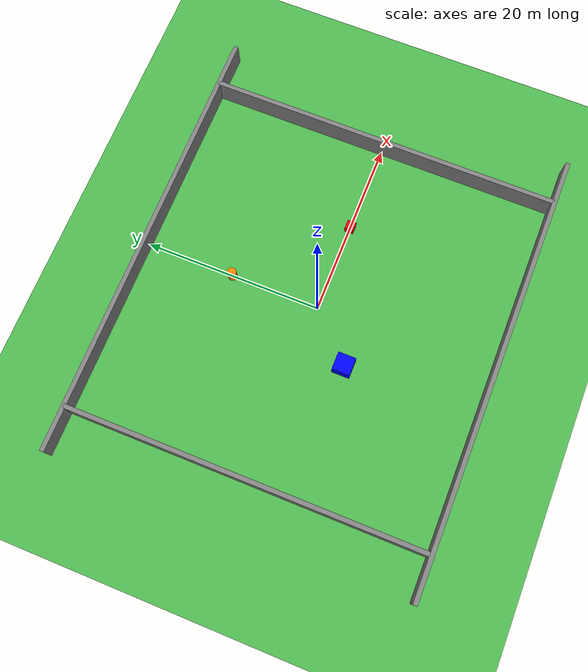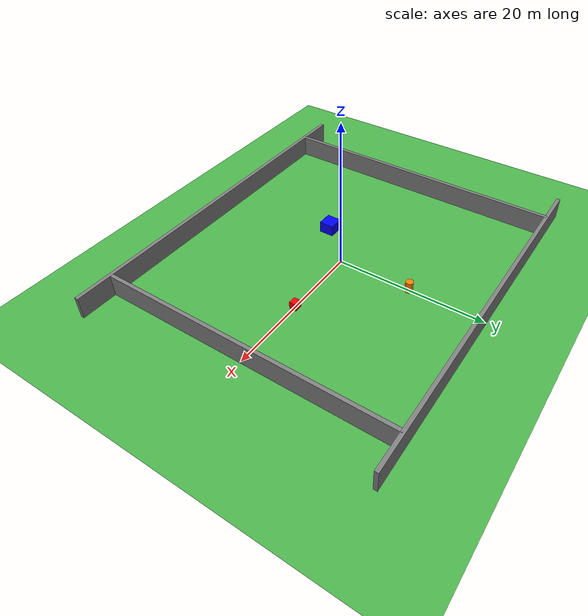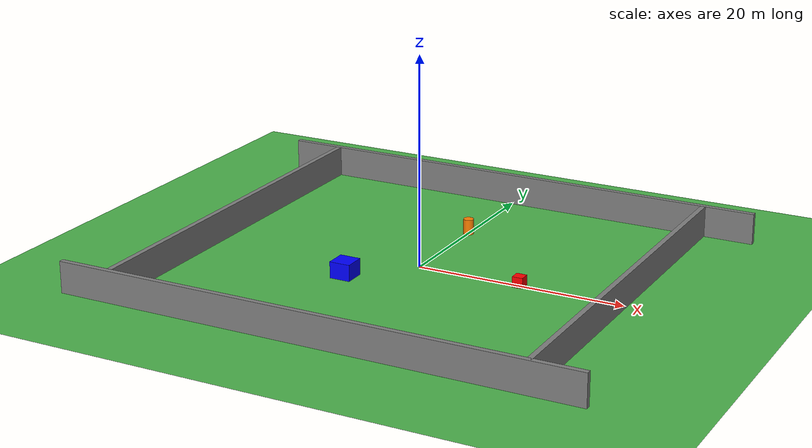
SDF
<?xml version="1.0" ?>
<sdf version="1.9">
  <world name="tracking_test">

    <!-- Physics -->
    <physics name="1ms" type="ignored">
      <max_step_size>0.001</max_step_size>
      <real_time_factor>1.0</real_time_factor>
    </physics>

    <!-- Plugins -->
    <plugin filename="gz-sim-physics-system" name="gz::sim::systems::Physics"/>
    <plugin filename="gz-sim-user-commands-system" name="gz::sim::systems::UserCommands"/>
    <plugin filename="gz-sim-scene-broadcaster-system" name="gz::sim::systems::SceneBroadcaster"/>
    <plugin filename="gz-sim-imu-system" name="gz::sim::systems::Imu"/>
    <plugin filename="gz-sim-sensors-system" name="gz::sim::systems::Sensors">
      <render_engine>ogre2</render_engine>
    </plugin>
    <plugin filename="gz-sim-air-pressure-system" name="gz::sim::systems::AirPressure"/>
    <plugin filename="gz-sim-altimeter-system" name="gz::sim::systems::Altimeter"/>
    <plugin filename="gz-sim-magnetometer-system" name="gz::sim::systems::Magnetometer"/>

    <!-- GUI -->
    <gui fullscreen="0">
      <plugin filename="MinimalScene" name="3D View">
        <gz-gui>
          <title>3D View</title>
          <property type="bool" key="showTitleBar">false</property>
          <property type="string" key="state">docked</property>
        </gz-gui>
        <engine>ogre2</engine>
        <scene>scene</scene>
        <ambient_light>0.4 0.4 0.4</ambient_light>
        <background_color>0.8 0.8 0.8</background_color>
        <camera_pose>-6 0 6 0 0.5 0</camera_pose>
      </plugin>
    </gui>

    <!-- Lighting -->
    <light type="directional" name="sun">
      <cast_shadows>true</cast_shadows>
      <pose>0 0 10 0 0 0</pose>
      <diffuse>0.8 0.8 0.8 1</diffuse>
      <specular>0.2 0.2 0.2 1</specular>
      <attenuation>
        <range>1000</range>
        <constant>0.9</constant>
        <linear>0.01</linear>
        <quadratic>0.001</quadratic>
      </attenuation>
      <direction>-0.5 0.1 -0.9</direction>
    </light>

    <!-- Ground Plane -->
    <model name="ground_plane">
      <static>true</static>
      <link name="link">
        <collision name="collision">
          <geometry>
            <plane>
              <normal>0 0 1</normal>
              <size>100 100</size>
            </plane>
          </geometry>
        </collision>
        <visual name="visual">
          <geometry>
            <plane>
              <normal>0 0 1</normal>
              <size>100 100</size>
            </plane>
          </geometry>
          <material>
            <ambient>0.3 0.7 0.3 1</ambient>
            <diffuse>0.3 0.7 0.3 1</diffuse>
            <specular>0 0 0 1</specular>
          </material>
        </visual>
      </link>
    </model>

    <!-- Moving Red Box (Target Object) -->
    <model name="red_target">
      <pose>10 0 0.5 0 0 0</pose>
      <link name="link">
        <inertial>
          <mass>1.0</mass>
          <inertia>
            <ixx>0.166</ixx>
            <ixy>0</ixy>
            <ixz>0</ixz>
            <iyy>0.166</iyy>
            <iyz>0</iyz>
            <izz>0.166</izz>
          </inertia>
        </inertial>
        <collision name="collision">
          <geometry>
            <box>
              <size>1 1 1</size>
            </box>
          </geometry>
        </collision>
        <visual name="visual">
          <geometry>
            <box>
              <size>1 1 1</size>
            </box>
          </geometry>
          <material>
            <ambient>1 0 0 1</ambient>
            <diffuse>1 0 0 1</diffuse>
            <specular>0.5 0.5 0.5 1</specular>
          </material>
        </visual>
      </link>
    </model>

    <!-- Moving Orange Cylinder -->
    <model name="orange_cylinder">
      <pose>0 10 0.75 0 0 0</pose>
      <link name="link">
        <inertial>
          <mass>1.0</mass>
          <inertia>
            <ixx>0.145</ixx>
            <ixy>0</ixy>
            <ixz>0</ixz>
            <iyy>0.145</iyy>
            <iyz>0</iyz>
            <izz>0.125</izz>
          </inertia>
        </inertial>
        <collision name="collision">
          <geometry>
            <cylinder>
              <radius>0.5</radius>
              <length>1.5</length>
            </cylinder>
          </geometry>
        </collision>
        <visual name="visual">
          <geometry>
            <cylinder>
              <radius>0.5</radius>
              <length>1.5</length>
            </cylinder>
          </geometry>
          <material>
            <ambient>1 0.5 0 1</ambient>
            <diffuse>1 0.5 0 1</diffuse>
            <specular>0.5 0.5 0.5 1</specular>
          </material>
        </visual>
      </link>
    </model>

    <!-- Static Blue Box (Landmark) -->
    <model name="blue_landmark">
      <static>true</static>
      <pose>-5 -5 0.5 0 0 0</pose>
      <link name="link">
        <collision name="collision">
          <geometry>
            <box>
              <size>2 2 2</size>
            </box>
          </geometry>
        </collision>
        <visual name="visual">
          <geometry>
            <box>
              <size>2 2 2</size>
            </box>
          </geometry>
          <material>
            <ambient>0 0 1 1</ambient>
            <diffuse>0 0 1 1</diffuse>
            <specular>0.3 0.3 0.3 1</specular>
          </material>
        </visual>
      </link>
    </model>

    <!-- Walls to create an arena -->
    <model name="wall_north">
      <static>true</static>
      <pose>0 20 1.5 0 0 0</pose>
      <link name="link">
        <collision name="collision">
          <geometry>
            <box>
              <size>50 0.5 3</size>
            </box>
          </geometry>
        </collision>
        <visual name="visual">
          <geometry>
            <box>
              <size>50 0.5 3</size>
            </box>
          </geometry>
          <material>
            <ambient>0.5 0.5 0.5 1</ambient>
            <diffuse>0.5 0.5 0.5 1</diffuse>
          </material>
        </visual>
      </link>
    </model>

    <model name="wall_south">
      <static>true</static>
      <pose>0 -20 1.5 0 0 0</pose>
      <link name="link">
        <collision name="collision">
          <geometry>
            <box>
              <size>50 0.5 3</size>
            </box>
          </geometry>
        </collision>
        <visual name="visual">
          <geometry>
            <box>
              <size>50 0.5 3</size>
            </box>
          </geometry>
          <material>
            <ambient>0.5 0.5 0.5 1</ambient>
            <diffuse>0.5 0.5 0.5 1</diffuse>
          </material>
        </visual>
      </link>
    </model>

    <model name="wall_east">
      <static>true</static>
      <pose>20 0 1.5 0 0 0</pose>
      <link name="link">
        <collision name="collision">
          <geometry>
            <box>
              <size>0.5 40 3</size>
            </box>
          </geometry>
        </collision>
        <visual name="visual">
          <geometry>
            <box>
              <size>0.5 40 3</size>
            </box>
          </geometry>
          <material>
            <ambient>0.5 0.5 0.5 1</ambient>
            <diffuse>0.5 0.5 0.5 1</diffuse>
          </material>
        </visual>
      </link>
    </model>

    <model name="wall_west">
      <static>true</static>
      <pose>-20 0 1.5 0 0 0</pose>
      <link name="link">
        <collision name="collision">
          <geometry>
            <box>
              <size>0.5 40 3</size>
            </box>
          </geometry>
        </collision>
        <visual name="visual">
          <geometry>
            <box>
              <size>0.5 40 3</size>
            </box>
          </geometry>
          <material>
            <ambient>0.5 0.5 0.5 1</ambient>
            <diffuse>0.5 0.5 0.5 1</diffuse>
          </material>
        </visual>
      </link>
    </model>

  </world>
</sdf>
